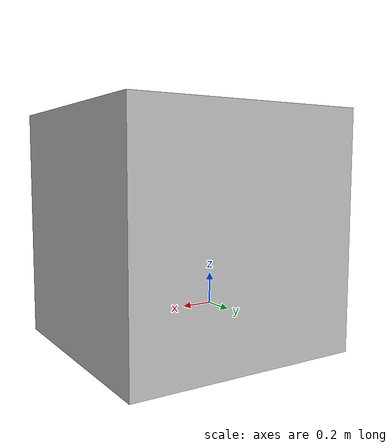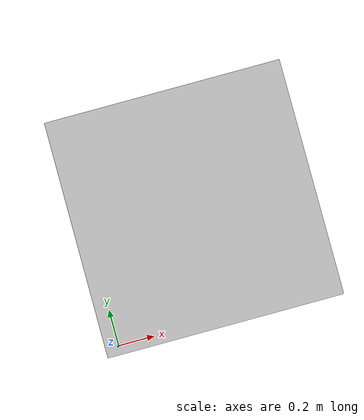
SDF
<?xml version="1.0" ?>
<sdf version="1.5">
  <model name="concrete_box">
    <static>true</static>
    <link name="box_link">
        <collision name="box_collision">
         <geometry>
            <box>
                <size>1.70 0.51 0.55</size>
            </box>
        </geometry>
      </collision>

      <visual name="box_mesh">
        <cast_shadows>true</cast_shadows>
        <geometry>
            <mesh>
                <uri>model://concrete003/meshes/model.dae</uri>
            </mesh>
        </geometry>
      </visual>
    </link>
  </model>
</sdf>
